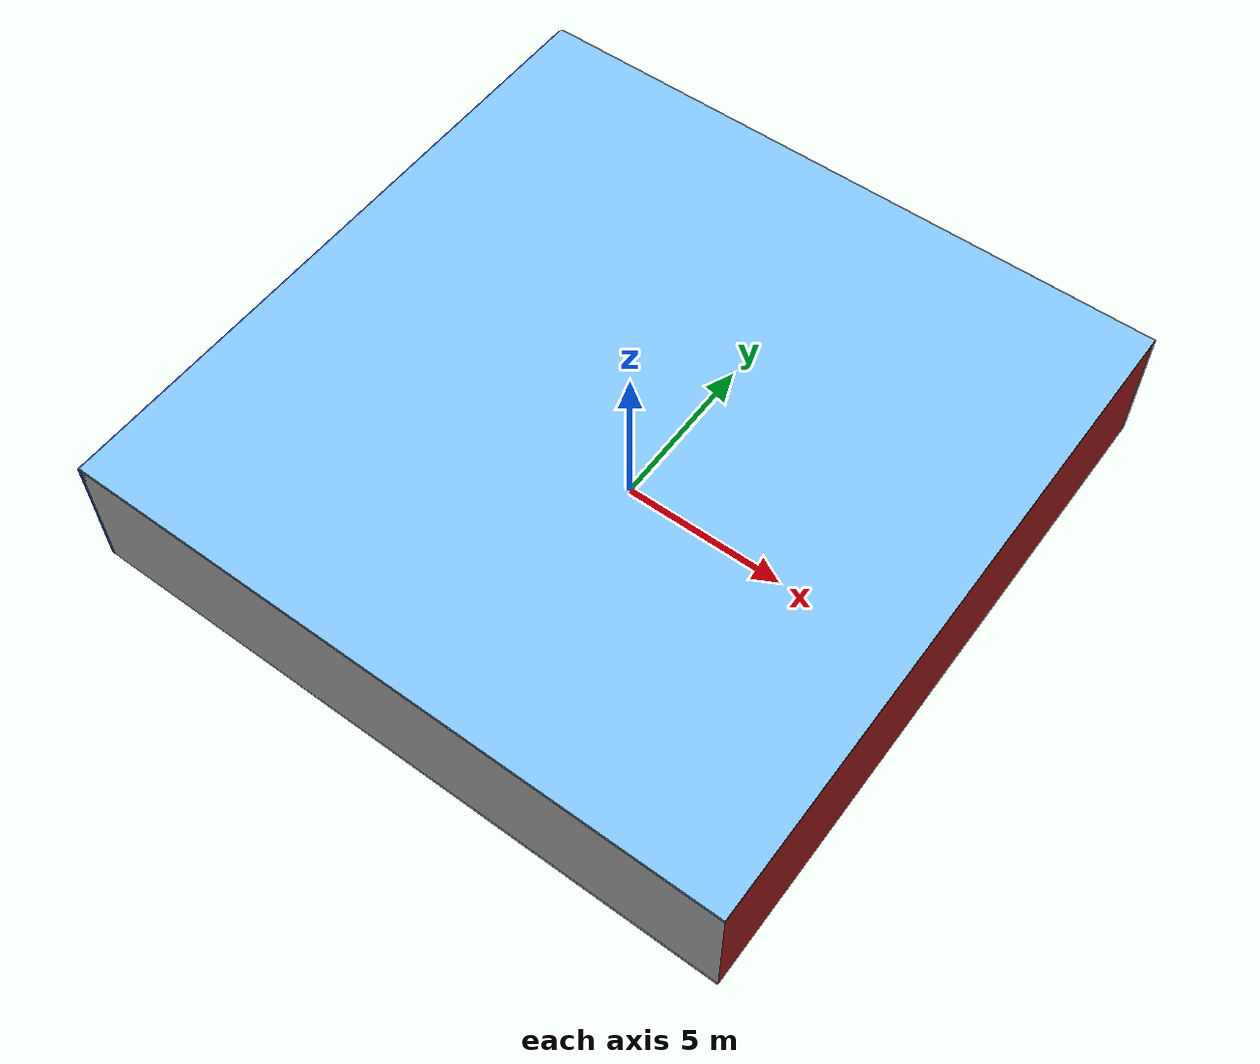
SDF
<sdf version="1.4">
 <world name="default">
  <physics type="ode">
   <max_step_size>0.001</max_step_size>
   <real_time_factor>1</real_time_factor>
   <real_time_update_rate>1000</real_time_update_rate>
   <gravity>0 0 -9.8</gravity>
  </physics>
  <scene><ambient>0.4 0.4 0.4 1</ambient><background>0.7 0.7 0.7 1</background><shadows>1</shadows></scene>
  <model name="Surrounding">
   <static>1</static>
   <link name="Ceiling">
    <collision name="Ceiling_Collision"><geometry><box><size>20 20 0.1</size></box></geometry></collision>
    <visual name="Ceiling_Visual">
     <geometry><box><size>20 20 0.1</size></box></geometry>
     <material>
      <script><uri>file://media/materials/scripts/gazebo.material</uri><name>Gazebo/SkyBlue</name></script>
     </material>
    </visual>
    <pose>0 0 4.05 0 0 0</pose>
   </link>
   <link name="Wall_South">
    <collision name="Wall_South_Collision">
     <geometry><box><size>20 0 4</size></box></geometry>
     <pose>0 0 2 0 -0 0</pose>
    </collision>
    <visual name="Wall_South_Visual">
     <pose>0 0 2 0 -0 0</pose>
     <geometry><box><size>20 0 4</size></box></geometry>
     <material>
      <script><uri>file://media/materials/scripts/gazebo.material</uri><name>Gazebo/GreyGradientSky</name></script>
     </material>
    </visual>
    <velocity_decay><linear>0</linear><angular>0</angular></velocity_decay>
    <pose>0 -10 0 0 -0 0</pose>
   </link>
   <link name="Wall_East">
    <collision name="Wall_21_Collision">
     <geometry><box><size>20 0 4</size></box></geometry>
     <pose>0 0 2 0 -0 0</pose>
    </collision>
    <visual name="Wall_21_Visual">
     <pose>0 0 2 0 -0 0</pose>
     <geometry><box><size>20 0 4</size></box></geometry>
     <material>
      <script><uri>file://media/materials/scripts/gazebo.material</uri><name>Gazebo/RedGlow</name></script>
     </material>
    </visual>
    <velocity_decay><linear>0</linear><angular>0</angular></velocity_decay>
    <pose>10 0 0 0 -0 1.5708</pose>
   </link>
   <link name="Wall_North">
    <collision name="Wall_22_Collision">
     <geometry><box><size>20 0.2 4</size></box></geometry>
     <pose>0 0 2 0 -0 0</pose>
    </collision>
    <visual name="Wall_22_Visual">
     <pose>0 0 2 0 -0 0</pose>
     <geometry><box><size>20 0.2 4</size></box></geometry>
     <material>
      <script><uri>file://media/materials/scripts/gazebo.material</uri><name>Gazebo/Grey</name></script>
     </material>
    </visual>
    <velocity_decay><linear>0</linear><angular>0</angular></velocity_decay>
    <pose>0 10 0 0 -0 0</pose>
   </link>
   <link name="Wall_West">
    <collision name="Wall_23_Collision">
     <geometry><box><size>20 0.2 4</size></box></geometry>
     <pose>0 0 2 0 -0 0</pose>
    </collision>
    <visual name="Wall_23_Visual">
     <pose>0 0 2 0 -0 0</pose>
     <geometry><box><size>20 0.2 4</size></box></geometry>
     <material>
      <script><uri>file://media/materials/scripts/gazebo.material</uri><name>Gazebo/BlueLaser</name></script>
     </material>
    </visual>
    <velocity_decay><linear>0</linear><angular>0</angular></velocity_decay>
    <pose>-10 0 0 0 0 -1.5708</pose>
   </link>
   <link name="Ground_link">
    <collision name="collision">
     <pose>0 0 .05 0 -0 0</pose>
     <geometry><box><size>20 20 0.1</size></box></geometry>
    </collision>
    <visual name="visual">
     <pose>0 0 .05 0 -0 0</pose>
     <geometry><box><size>20 20 0.1</size></box></geometry>
     <material>
      <script><uri>file://media/materials/scripts/gazebo.material</uri><name>Gazebo/FlatBlack</name></script>
     </material>
    </visual>
   </link>
   <static>1</static>
  </model>
  <spherical_coordinates>
   <surface_model>EARTH_WGS84</surface_model>
   <latitude_deg>0</latitude_deg>
   <longitude_deg>0</longitude_deg>
   <elevation>0</elevation>
   <heading_deg>0</heading_deg>
  </spherical_coordinates>
  <light name="lightball_0" type="diffuse">
   <diffuse>0.8 0.8 0.8 1</diffuse>
   <specular>0.2 0.2 0.2 1</specular>
   <attenuation>
    <range>100</range>
    <constant>0.7</constant>
    <linear>0.01</linear>
    <quadratic>0.001</quadratic>
   </attenuation>
   <direction>-0.5 0.1 -0.9</direction>
   <pose>-4.46744519277 -8.61830373351 1.91261842205 0 0 0</pose>
  </light>
  <light name="lightball_1" type="diffuse">
   <diffuse>0.8 0.8 0.8 1</diffuse>
   <specular>0.2 0.2 0.2 1</specular>
   <attenuation>
    <range>100</range>
    <constant>0.7</constant>
    <linear>0.01</linear>
    <quadratic>0.001</quadratic>
   </attenuation>
   <direction>-0.5 0.1 -0.9</direction>
   <pose>2.29070751265 -5.96823800972 3.194168194 0 0 0</pose>
  </light>
  <light name="lightball_2" type="diffuse">
   <diffuse>0.8 0.8 0.8 1</diffuse>
   <specular>0.2 0.2 0.2 1</specular>
   <attenuation>
    <range>100</range>
    <constant>0.7</constant>
    <linear>0.01</linear>
    <quadratic>0.001</quadratic>
   </attenuation>
   <direction>-0.5 0.1 -0.9</direction>
   <pose>6.66730736147 -7.90416774598 0.580491543375 0 0 0</pose>
  </light>
  <include>
   <uri>model://robocup_3Dsim_goal</uri>
   <pose>-4.90434347945 1.60302438289 0 0 0 0.868109856987</pose>
  </include>
  <include>
   <uri>model://robocup_3Dsim_goal</uri>
   <pose>-5.3974633908 7.99345064674 0 0 0 0.655952486256</pose>
  </include>
  <include><uri>model://table</uri><pose>-1.88494139236 4.71180758138 0 0 0 0.851493973959</pose></include>
  <include>
   <uri>model://textured_shapes</uri>
   <pose>1.2209654087 -6.9202009363 0 0 0 1.25344289685</pose>
  </include>
  <include><uri>model://table</uri><pose>1.04134609125 -0.910287668703 0 0 0 1.04172066409</pose></include>
  <include>
   <uri>model://textured_shapes</uri>
   <pose>5.13658712739 2.41769168639 0 0 0 2.35896399652</pose>
  </include>
 </world>
</sdf>

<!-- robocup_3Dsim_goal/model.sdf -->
<sdf version="1.5">
  <model name="robocup_3d_goal">
    <static>true</static>
    <link name="left_post">
      <pose>0 1.05 0.45 0 0 0</pose>
      <collision name="collision">
        <geometry>
          <cylinder>
            <radius>0.05</radius>
            <length>0.9</length>
          </cylinder>
        </geometry>
      </collision>
      <visual name="visual">
        <geometry>
          <cylinder>
            <radius>0.05</radius>
            <length>0.9</length>
          </cylinder>
        </geometry>
        <material>
          <script>
            <uri>file://media/materials/scripts/gazebo.material</uri>
            <name>Gazebo/ZincYellow</name>
          </script>
        </material>
      </visual>
    </link>
    <link name="left_support_horiz_lower">
      <pose>0.30 1.05 0.01 0 0 0</pose>
      <collision name="collision">
        <geometry>
          <box>
            <size>0.50 0.02 0.02</size>
          </box>
        </geometry>
      </collision>
      <visual name="visual">
        <geometry>
          <box>
            <size>0.50 0.02 0.02</size>
          </box>
        </geometry>
        <material>
          <script>
            <uri>file://media/materials/scripts/gazebo.material</uri>
            <name>Gazebo/White</name>
          </script>
        </material>
      </visual>
    </link>
    <link name="left_support_horiz_upper">
      <pose>0.30 1.05 0.79 0 0 0</pose>
      <collision name="collision">
        <geometry>
          <box>
            <size>0.50 0.02 0.02</size>
          </box>
        </geometry>
      </collision>
      <visual name="visual">
        <geometry>
          <box>
            <size>0.50 0.02 0.02</size>
          </box>
        </geometry>
        <material>
          <script>
            <uri>file://media/materials/scripts/gazebo.material</uri>
            <name>Gazebo/White</name>
          </script>
        </material>
      </visual>
    </link>
    <link name="left_support_vertical">
      <pose>0.56 1.05 0.4 0 1.5708 0</pose>
      <collision name="collision">
        <geometry>
          <box>
            <size>0.80 0.02 0.02</size>
          </box>
        </geometry>
      </collision>
      <visual name="visual">
        <geometry>
          <box>
            <size>0.80 0.02 0.02</size>
          </box>
        </geometry>
        <material>
          <script>
            <uri>file://media/materials/scripts/gazebo.material</uri>
            <name>Gazebo/White</name>
          </script>
        </material>
      </visual>
    </link>
    <link name="right_support_horiz_lower">
      <pose>0.30 -1.05 0.01 0 0 0</pose>
      <collision name="collision">
        <geometry>
          <box>
            <size>0.50 0.02 0.02</size>
          </box>
        </geometry>
      </collision>
      <visual name="visual">
        <geometry>
          <box>
            <size>0.50 0.02 0.02</size>
          </box>
        </geometry>
        <material>
          <script>
            <uri>file://media/materials/scripts/gazebo.material</uri>
            <name>Gazebo/White</name>
          </script>
        </material>
      </visual>
    </link>
    <link name="right_support_horiz_upper">
      <pose>0.30 -1.05 0.79 0 0 0</pose>
      <collision name="collision">
        <geometry>
          <box>
            <size>0.50 0.02 0.02</size>
          </box>
        </geometry>
      </collision>
      <visual name="visual">
        <geometry>
          <box>
            <size>0.50 0.02 0.02</size>
          </box>
        </geometry>
        <material>
          <script>
            <uri>file://media/materials/scripts/gazebo.material</uri>
            <name>Gazebo/White</name>
          </script>
        </material>
      </visual>
    </link>
    <link name="right_support_vertical">
      <pose>0.56 -1.05 0.4 0 1.5708 0</pose>
      <collision name="collision">
        <geometry>
          <box>
            <size>0.80 0.02 0.02</size>
          </box>
        </geometry>
      </collision>
      <visual name="visual">
        <geometry>
          <box>
            <size>0.80 0.02 0.02</size>
          </box>
        </geometry>
        <material>
          <script>
            <uri>file://media/materials/scripts/gazebo.material</uri>
            <name>Gazebo/White</name>
          </script>
        </material>
      </visual>
    </link>
    <link name="center_support_horiz_lower">
      <pose>0.56 0 0.01 0 1.5708 0</pose>
      <collision name="collision">
        <geometry>
          <box>
            <size>0.02 2.08 0.02</size>
          </box>
        </geometry>
      </collision>
      <visual name="visual">
        <geometry>
          <box>
            <size>0.02 2.08 0.02</size>
          </box>
        </geometry>
        <material>
          <script>
            <uri>file://media/materials/scripts/gazebo.material</uri>
            <name>Gazebo/White</name>
          </script>
        </material>
      </visual>
    </link>
    <link name="center_support_horiz_upper">
      <pose>0.56 0 0.79 0 1.5708 0</pose>
      <collision name="collision">
        <geometry>
          <box>
            <size>0.02 2.08 0.02</size>
          </box>
        </geometry>
      </collision>
      <visual name="visual">
        <geometry>
          <box>
            <size>0.02 2.08 0.02</size>
          </box>
        </geometry>
        <material>
          <script>
            <uri>file://media/materials/scripts/gazebo.material</uri>
            <name>Gazebo/White</name>
          </script>
        </material>
      </visual>
    </link>
    <link name="right_post">
      <pose>0 -1.05 0.45 0 0 0</pose>
      <collision name="collision">
        <geometry>
          <cylinder>
            <radius>0.05</radius>
            <length>0.9</length>
          </cylinder>
        </geometry>
      </collision>
      <visual name="visual">
        <geometry>
          <cylinder>
            <radius>0.05</radius>
            <length>0.9</length>
          </cylinder>
        </geometry>
        <material>
          <script>
            <uri>file://media/materials/scripts/gazebo.material</uri>
            <name>Gazebo/ZincYellow</name>
          </script>
        </material>
      </visual>
    </link>
    <link name="crossbar">
      <pose>0 0 0.85 1.57 1.57 0</pose>
      <collision name="collision">
        <geometry>
          <cylinder>
            <radius>0.05</radius>
            <length>2.0</length>
          </cylinder>
        </geometry>
      </collision>
      <visual name="visual">
        <geometry>
          <cylinder>
            <radius>0.05</radius>
            <length>2.0</length>
          </cylinder>
        </geometry>
        <material>
          <script>
            <uri>file://media/materials/scripts/gazebo.material</uri>
            <name>Gazebo/ZincYellow</name>
          </script>
        </material>
      </visual>
    </link>
    <link name="center_net">
      <pose>0.56 0 0.40 0 0 0</pose>
      <collision name="collision">
        <geometry>
          <box>
            <size>0.01 2.1 0.80</size>
          </box>
        </geometry>
      </collision>
      <visual name="visual">
        <geometry>
          <box>
            <size>0.01 2.1 0.80</size>
          </box>
        </geometry>
        <material>
          <script>
            <uri>model://../model_source/models/robocup09_spl_field/materials/scripts/</uri>
            <uri>model://../model_source/models/robocup09_spl_field/materials/textures/</uri>
            <name>RoboCup/Net</name>
          </script>
        </material>
      </visual>
    </link>
    <link name="left_net">
      <pose>0.30 1.05 0.40 0 0 0</pose>
      <collision name="collision">
        <geometry>
          <box>
            <size>0.50 0.01 0.76</size>
          </box>
        </geometry>
      </collision>
      <visual name="visual">
        <geometry>
          <box>
            <size>0.50 0.01 0.76</size>
          </box>
        </geometry>
        <material>
          <script>
            <uri>model://../model_source/models/robocup09_spl_field/materials/scripts/</uri>
            <uri>model://../model_source/models/robocup09_spl_field/materials/textures/</uri>
            <name>RoboCup/Net</name>
          </script>
        </material>
      </visual>
    </link>
    <link name="right_net">
      <pose>0.30 -1.05 0.40 0 0 0</pose>
      <collision name="collision">
        <geometry>
          <box>
            <size>0.50 0.01 0.76</size>
          </box>
        </geometry>
      </collision>
      <visual name="visual">
        <geometry>
          <box>
            <size>0.50 0.01 0.76</size>
          </box>
        </geometry>
        <material>
          <script>
            <uri>model://../model_source/models/robocup09_spl_field/materials/scripts/</uri>
            <uri>model://../model_source/models/robocup09_spl_field/materials/textures/</uri>
            <name>RoboCup/Net</name>
          </script>
        </material>
      </visual>
    </link>
  </model>
</sdf>

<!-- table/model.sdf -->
<sdf version="1.5">
  <model name="table">
    <static>true</static>
    <link name="link">
      <collision name="surface">
        <pose>0 0 1.0 0 0 0</pose>
        <geometry>
          <box>
            <size>1.5 0.8 0.03</size>
          </box>
        </geometry>
        <surface>
          <friction>
            <ode>
              <mu>0.6</mu>
              <mu2>0.6</mu2>
            </ode>
          </friction>
        </surface>
      </collision>
      <visual name="visual1">
        <pose>0 0 1.0 0 0 0</pose>
        <geometry>
          <box>
            <size>1.5 0.8 0.03</size>
          </box>
        </geometry>
        <material>
          <script>
            <uri>model://media/materials/scripts/gazebo.material</uri>
            <name>Gazebo/Wood</name>
          </script>
        </material>
      </visual>
      <collision name="front_left_leg">
        <pose>0.68 0.38 0.5 0 0 0</pose>
        <geometry>
          <cylinder>
            <radius>0.02</radius>
            <length>1.0</length>
          </cylinder>
        </geometry>
      </collision>
      <visual name="front_left_leg">
        <pose>0.68 0.38 0.5 0 0 0</pose>
        <geometry>
          <cylinder>
            <radius>0.02</radius>
            <length>1.0</length>
          </cylinder>
        </geometry>
        <material>
          <script>
            <uri>model://media/materials/scripts/gazebo.material</uri>
            <name>Gazebo/Grey</name>
          </script>
        </material>
      </visual>
      <collision name="front_right_leg">
        <pose>0.68 -0.38 0.5 0 0 0</pose>
        <geometry>
          <cylinder>
            <radius>0.02</radius>
            <length>1.0</length>
          </cylinder>
        </geometry>
      </collision>
      <visual name="front_right_leg">
        <pose>0.68 -0.38 0.5 0 0 0</pose>
        <geometry>
          <cylinder>
            <radius>0.02</radius>
            <length>1.0</length>
          </cylinder>
        </geometry>
        <material>
          <script>
            <uri>model://media/materials/scripts/gazebo.material</uri>
            <name>Gazebo/Grey</name>
          </script>
        </material>
      </visual>
      <collision name="back_right_leg">
        <pose>-0.68 -0.38 0.5 0 0 0</pose>
        <geometry>
          <cylinder>
            <radius>0.02</radius>
            <length>1.0</length>
          </cylinder>
        </geometry>
      </collision>
      <visual name="back_right_leg">
        <pose>-0.68 -0.38 0.5 0 0 0</pose>
        <geometry>
          <cylinder>
            <radius>0.02</radius>
            <length>1.0</length>
          </cylinder>
        </geometry>
        <material>
          <script>
            <uri>model://media/materials/scripts/gazebo.material</uri>
            <name>Gazebo/Grey</name>
          </script>
        </material>
      </visual>
      <collision name="back_left_leg">
        <pose>-0.68 0.38 0.5 0 0 0</pose>
        <geometry>
          <cylinder>
            <radius>0.02</radius>
            <length>1.0</length>
          </cylinder>
        </geometry>
      </collision>
      <visual name="back_left_leg">
        <pose>-0.68 0.38 0.5 0 0 0</pose>
        <geometry>
          <cylinder>
            <radius>0.02</radius>
            <length>1.0</length>
          </cylinder>
        </geometry>
        <material>
          <script>
            <uri>model://media/materials/scripts/gazebo.material</uri>
            <name>Gazebo/Grey</name>
          </script>
        </material>
      </visual>
    </link>
  </model>
</sdf>

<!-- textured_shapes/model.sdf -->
<sdf version="1.6">
  <model name="textured_shapes">
    <pose>0 0 0.5 0 0 0</pose>
    <link name="box">
      <pose>0 -1.5 0 0 0 0</pose>
      <collision name="collision">
        <geometry>
          <box>
            <size>1 1 1</size>
          </box>
        </geometry>
      </collision>
      <visual name="visual">
        <geometry>
          <box>
            <size>1 1 1</size>
          </box>
        </geometry>
        <material>
          <script>
            <uri>model://../model_source/models/textured_shapes/materials/scripts</uri>
            <uri>model://../model_source/models/textured_shapes/materials/textures</uri>
            <name>TexturedShape/Squares</name>
          </script>
        </material>
      </visual>
    </link>
    <link name="sphere">
      <collision name="collision">
        <geometry>
          <sphere>
            <radius>0.5</radius>
          </sphere>
        </geometry>
      </collision>
      <visual name="visual">
        <geometry>
          <sphere>
            <radius>0.5</radius>
          </sphere>
        </geometry>
        <material>
          <script>
            <uri>model://../model_source/models/textured_shapes/materials/scripts</uri>
            <uri>model://../model_source/models/textured_shapes/materials/textures</uri>
            <name>TexturedShape/Squares</name>
          </script>
        </material>
      </visual>
    </link>
    <link name="cylinder">
      <pose>0 1.5 0 0 0 0</pose>
      <collision name="collision">
        <geometry>
          <cylinder>
            <radius>0.5</radius>
            <length>1</length>
          </cylinder>
        </geometry>
      </collision>
      <visual name="visual">
        <geometry>
          <cylinder>
            <radius>0.5</radius>
            <length>1</length>
          </cylinder>
        </geometry>
        <material>
          <script>
            <uri>model://../model_source/models/textured_shapes/materials/scripts</uri>
            <uri>model://../model_source/models/textured_shapes/materials/textures</uri>
            <name>TexturedShape/Squares</name>
          </script>
        </material>
      </visual>
    </link>
  </model>
</sdf>
